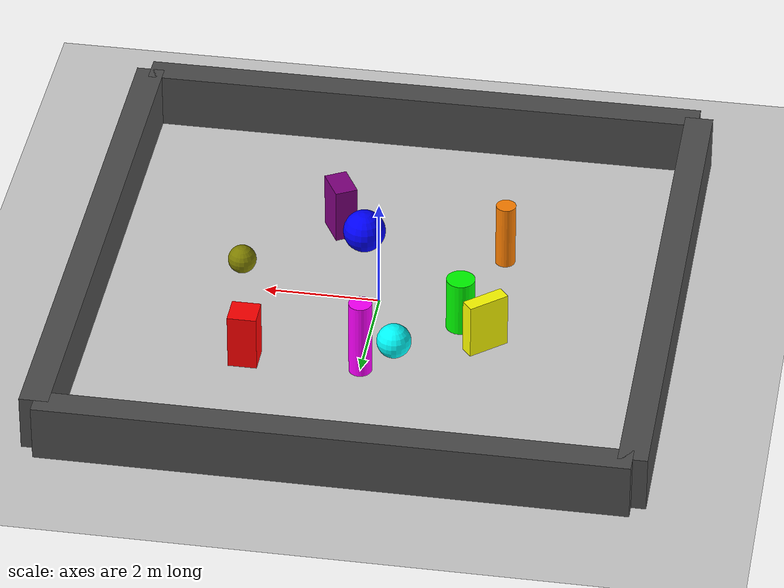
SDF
<sdf version="1.6">
  <world name="Obstacle_1">
    <physics name="1ms" type="ignored">
      <max_step_size>0.001</max_step_size>
      <real_time_factor>1.0</real_time_factor>
    </physics>
    <plugin
      filename="gz-sim-physics-system"
      name="gz::sim::systems::Physics">
    </plugin>
    <plugin
      filename="gz-sim-user-commands-system"
      name="gz::sim::systems::UserCommands">
    </plugin>
    <plugin
      filename="gz-sim-scene-broadcaster-system"
      name="gz::sim::systems::SceneBroadcaster">
    </plugin>
    <plugin
      filename="gz-sim-sensors-system"
      name="gz::sim::systems::Sensors">
      <render_engine>ogre2</render_engine>
    </plugin>
    <plugin
      filename="gz-sim-contact-system"
      name="gz::sim::systems::Contact">
    </plugin>

    <light type="directional" name="sun">
      <cast_shadows>true</cast_shadows>
      <pose>0 0 10 0 0 0</pose>
      <diffuse>0.8 0.8 0.8 1</diffuse>
      <specular>0.2 0.2 0.2 1</specular>
      <attenuation>
        <range>1000</range>
        <constant>0.9</constant>
        <linear>0.01</linear>
        <quadratic>0.001</quadratic>
      </attenuation>
      <direction>-0.5 0.1 -0.9</direction>
    </light>

    <model name="ground_plane">
      <static>true</static>
      <link name="link">
        <collision name="collision">
          <geometry>
            <plane>
              <normal>0 0 1</normal>
              <size>400 300</size>
            </plane>
          </geometry>
        </collision>
        <visual name="visual">
          <geometry>
            <plane>
              <normal>0 0 1</normal>
              <size>400 300</size>
            </plane>
          </geometry>
          <material>
            <ambient>0.8 0.8 0.8 1</ambient>
            <diffuse>0.8 0.8 0.8 1</diffuse>
            <specular>0.8 0.8 0.8 1</specular>
          </material>
        </visual>
      </link>
    </model>

    <!-- Boîte 1 -->
    <model name="box_obstacle_1">
      <static>true</static>
      <link name="link">
        <pose>2 2 0.5 0 0 0</pose>
        <collision name="collision">
          <geometry>
            <box>
              <size>0.5 0.5 1</size>
            </box>
          </geometry>
        </collision>
        <visual name="visual">
          <geometry>
            <box>
              <size>0.5 0.5 1</size>
            </box>
          </geometry>
          <material>
            <ambient>1 0 0 1</ambient>
          </material>
        </visual>
      </link>
    </model>

    <!-- Boîte 2 -->
    <model name="box_obstacle_2">
      <static>true</static>
      <link name="link">
        <pose>-2 1 0.5 0 0 0.7</pose>
        <collision name="collision">
          <geometry>
            <box>
              <size>0.75 0.25 1</size>
            </box>
          </geometry>
        </collision>
        <visual name="visual">
          <geometry>
            <box>
              <size>0.75 0.25 1</size>
            </box>
          </geometry>
          <material>
            <ambient>1 1 0 1</ambient>
          </material>
        </visual>
      </link>
    </model>

    <!-- Boîte 3 -->
    <model name="box_obstacle_3">
      <static>true</static>
      <link name="link">
        <pose>1 -2 0.5 0 0 0.5</pose>
        <collision name="collision">
          <geometry>
            <box>
              <size>0.4 0.6 1</size>
            </box>
          </geometry>
        </collision>
        <visual name="visual">
          <geometry>
            <box>
              <size>0.4 0.6 1</size>
            </box>
          </geometry>
          <material>
            <ambient>0.5 0 0.5 1</ambient>
          </material>
        </visual>
      </link>
    </model>

    <!-- Cylindre 1 -->
    <model name="cylinder_obstacle_1">
      <static>true</static>
      <link name="link">
        <pose>-1.5 0.5 0.5 0 0 0</pose>
        <collision name="collision">
          <geometry>
            <cylinder>
              <radius>0.25</radius>
              <length>1</length>
            </cylinder>
          </geometry>
        </collision>
        <visual name="visual">
          <geometry>
            <cylinder>
              <radius>0.25</radius>
              <length>1</length>
            </cylinder>
          </geometry>
          <material>
            <ambient>0 1 0 1</ambient>
          </material>
        </visual>
      </link>
    </model>

    <!-- Cylindre 2 -->
    <model name="cylinder_obstacle_2">
      <static>true</static>
      <link name="link">
        <pose>0 2 0.7 0 0 0</pose>
        <collision name="collision">
          <geometry>
            <cylinder>
              <radius>0.2</radius>
              <length>1.4</length>
            </cylinder>
          </geometry>
        </collision>
        <visual name="visual">
          <geometry>
            <cylinder>
              <radius>0.2</radius>
              <length>1.4</length>
            </cylinder>
          </geometry>
          <material>
            <ambient>1 0 1 1</ambient>
          </material>
        </visual>
      </link>
    </model>

    <!-- Cylindre 3 -->
    <model name="cylinder_obstacle_3">
      <static>true</static>
      <link name="link">
        <pose>-2 -1.5 0.6 0 0 0</pose>
        <collision name="collision">
          <geometry>
            <cylinder>
              <radius>0.175</radius>
              <length>1.2</length>
            </cylinder>
          </geometry>
        </collision>
        <visual name="visual">
          <geometry>
            <cylinder>
              <radius>0.175</radius>
              <length>1.2</length>
            </cylinder>
          </geometry>
          <material>
            <ambient>1 0.5 0 1</ambient>
          </material>
        </visual>
      </link>
    </model>

    <!-- Sphère 1 -->
    <model name="sphere_obstacle_1">
      <static>true</static>
      <link name="link">
        <pose>0.5 -1.5 0.375 0 0 0</pose>
        <collision name="collision">
          <geometry>
            <sphere>
              <radius>0.375</radius>
            </sphere>
          </geometry>
        </collision>
        <visual name="visual">
          <geometry>
            <sphere>
              <radius>0.375</radius>
            </sphere>
          </geometry>
          <material>
            <ambient>0 0 1 1</ambient>
          </material>
        </visual>
      </link>
    </model>

    <!-- Sphère 2 -->
    <model name="sphere_obstacle_2">
      <static>true</static>
      <link name="link">
        <pose>-0.5 1.5 0.3 0 0 0</pose>
        <collision name="collision">
          <geometry>
            <sphere>
              <radius>0.3</radius>
            </sphere>
          </geometry>
        </collision>
        <visual name="visual">
          <geometry>
            <sphere>
              <radius>0.3</radius>
            </sphere>
          </geometry>
          <material>
            <ambient>0 1 1 1</ambient>
          </material>
        </visual>
      </link>
    </model>

    <!-- Sphère 3 -->
    <model name="sphere_obstacle_3">
      <static>true</static>
      <link name="link">
        <pose>2.5 -0.5 0.25 0 0 0</pose>
        <collision name="collision">
          <geometry>
            <sphere>
              <radius>0.25</radius>
            </sphere>
          </geometry>
        </collision>
        <visual name="visual">
          <geometry>
            <sphere>
              <radius>0.25</radius>
            </sphere>
          </geometry>
          <material>
            <ambient>0.5 0.5 0 1</ambient>
          </material>
        </visual>
      </link>
    </model>

    <!-- MUR NORD -->
    <model name="wall_north">
      <static>true</static>
      <link name="link">
        <pose>0 5 0.5 0 0 0</pose>
        <collision name="collision">
          <geometry>
            <box>
              <size>10 0.5 1</size>
            </box>
          </geometry>
        </collision>
        <visual name="visual">
          <geometry>
            <box>
              <size>10 0.5 1</size>
            </box>
          </geometry>
          <material>
            <ambient>0.3 0.3 0.3 1</ambient>
          </material>
        </visual>
      </link>
    </model>

    <!-- MUR SUD -->
    <model name="wall_south">
      <static>true</static>
      <link name="link">
        <pose>0 -5 0.5 0 0 0</pose>
        <collision name="collision">
          <geometry>
            <box>
              <size>10 0.5 1</size>
            </box>
          </geometry>
        </collision>
        <visual name="visual">
          <geometry>
            <box>
              <size>10 0.5 1</size>
            </box>
          </geometry>
          <material>
            <ambient>0.3 0.3 0.3 1</ambient>
          </material>
        </visual>
      </link>
    </model>

    <!-- MUR EST -->
    <model name="wall_east">
      <static>true</static>
      <link name="link">
        <pose>5 0 0.5 0 0 0</pose>
        <collision name="collision">
          <geometry>
            <box>
              <size>0.5 10 1</size>
            </box>
          </geometry>
        </collision>
        <visual name="visual">
          <geometry>
            <box>
              <size>0.5 10 1</size>
            </box>
          </geometry>
          <material>
            <ambient>0.3 0.3 0.3 1</ambient>
          </material>
        </visual>
      </link>
    </model>

    <!-- MUR OUEST -->
    <model name="wall_west">
      <static>true</static>
      <link name="link">
        <pose>-5 0 0.5 0 0 0</pose>
        <collision name="collision">
          <geometry>
            <box>
              <size>0.5 10 1</size>
            </box>
          </geometry>
        </collision>
        <visual name="visual">
          <geometry>
            <box>
              <size>0.5 10 1</size>
            </box>
          </geometry>
          <material>
            <ambient>0.3 0.3 0.3 1</ambient>
          </material>
        </visual>
      </link>
    </model>
  </world>
</sdf>
